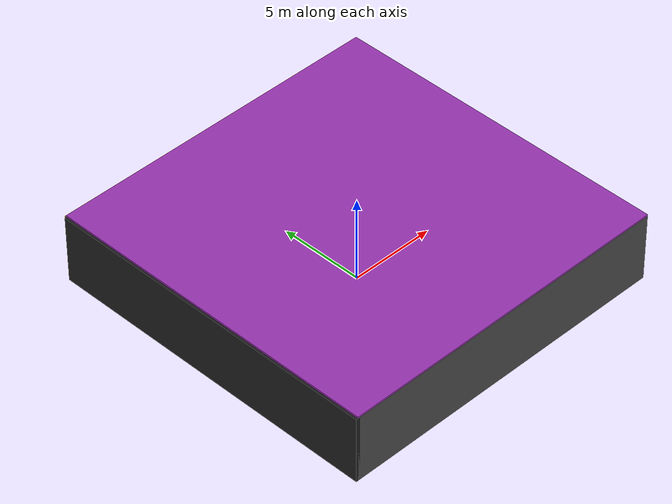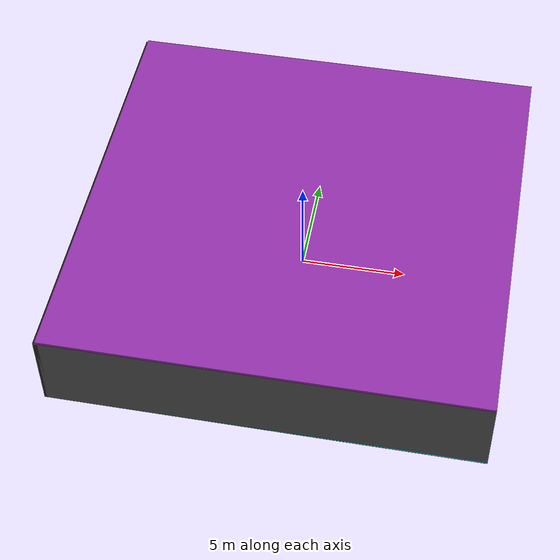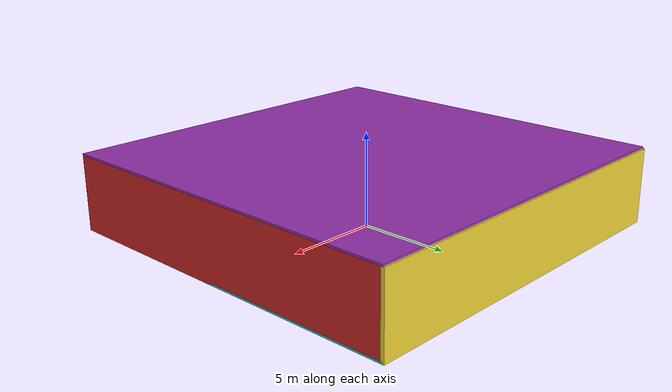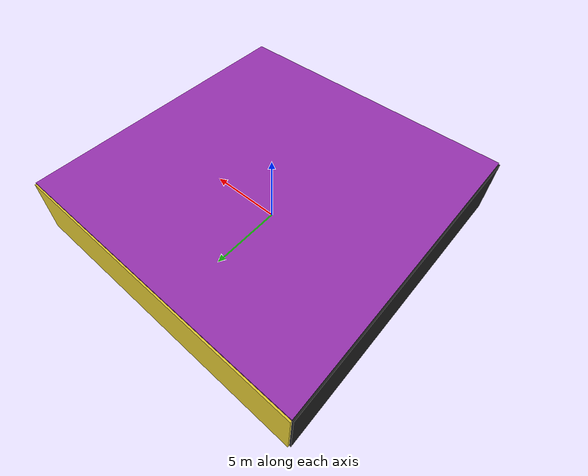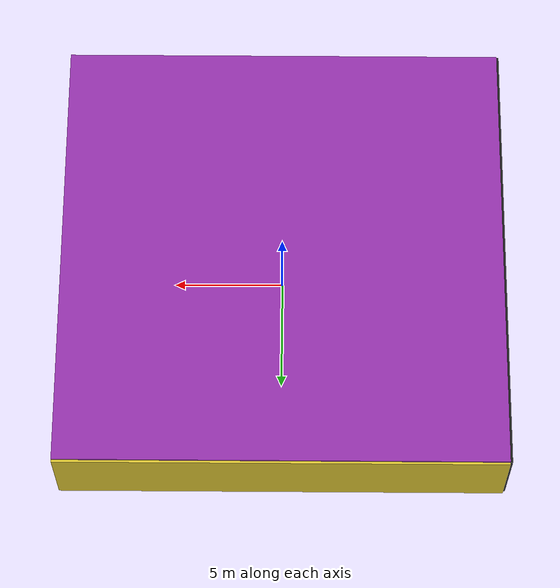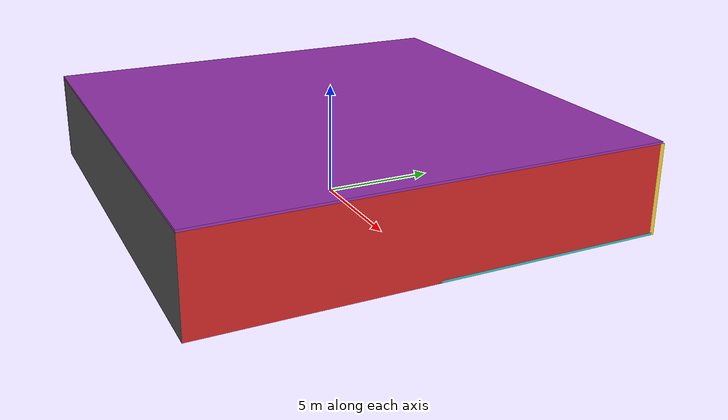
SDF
<sdf version="1.4">
 <world name="default">
  <physics type="ode">
   <max_step_size>0.001</max_step_size>
   <real_time_factor>1</real_time_factor>
   <real_time_update_rate>1000</real_time_update_rate>
   <gravity>0 0 -9.8</gravity>
  </physics>
  <scene><ambient>0.4 0.4 0.4 1</ambient><background>0.7 0.7 0.7 1</background><shadows>1</shadows></scene>
  <model name="Surrounding">
   <static>1</static>
   <link name="Ceiling">
    <collision name="Ceiling_Collision"><geometry><box><size>20 20 0.1</size></box></geometry></collision>
    <visual name="Ceiling_Visual">
     <geometry><box><size>20 20 0.1</size></box></geometry>
     <material>
      <script><uri>file://media/materials/scripts/gazebo.material</uri><name>Gazebo/Purple</name></script>
     </material>
    </visual>
    <pose>0 0 4.05 0 0 0</pose>
   </link>
   <link name="Wall_South">
    <collision name="Wall_South_Collision">
     <geometry><box><size>20 0 4</size></box></geometry>
     <pose>0 0 2 0 -0 0</pose>
    </collision>
    <visual name="Wall_South_Visual">
     <pose>0 0 2 0 -0 0</pose>
     <geometry><box><size>20 0 4</size></box></geometry>
     <material>
      <script><uri>file://media/materials/scripts/gazebo.material</uri><name>Gazebo/Road</name></script>
     </material>
    </visual>
    <velocity_decay><linear>0</linear><angular>0</angular></velocity_decay>
    <pose>0 -10 0 0 -0 0</pose>
   </link>
   <link name="Wall_East">
    <collision name="Wall_21_Collision">
     <geometry><box><size>20 0 4</size></box></geometry>
     <pose>0 0 2 0 -0 0</pose>
    </collision>
    <visual name="Wall_21_Visual">
     <pose>0 0 2 0 -0 0</pose>
     <geometry><box><size>20 0 4</size></box></geometry>
     <material>
      <script><uri>file://media/materials/scripts/gazebo.material</uri><name>Gazebo/RedGlow</name></script>
     </material>
    </visual>
    <velocity_decay><linear>0</linear><angular>0</angular></velocity_decay>
    <pose>10 0 0 0 -0 1.5708</pose>
   </link>
   <link name="Wall_North">
    <collision name="Wall_22_Collision">
     <geometry><box><size>20 0.2 4</size></box></geometry>
     <pose>0 0 2 0 -0 0</pose>
    </collision>
    <visual name="Wall_22_Visual">
     <pose>0 0 2 0 -0 0</pose>
     <geometry><box><size>20 0.2 4</size></box></geometry>
     <material>
      <script><uri>file://media/materials/scripts/gazebo.material</uri><name>Gazebo/ZincYellow</name></script>
     </material>
    </visual>
    <velocity_decay><linear>0</linear><angular>0</angular></velocity_decay>
    <pose>0 10 0 0 -0 0</pose>
   </link>
   <link name="Wall_West">
    <collision name="Wall_23_Collision">
     <geometry><box><size>20 0.2 4</size></box></geometry>
     <pose>0 0 2 0 -0 0</pose>
    </collision>
    <visual name="Wall_23_Visual">
     <pose>0 0 2 0 -0 0</pose>
     <geometry><box><size>20 0.2 4</size></box></geometry>
     <material>
      <script><uri>file://media/materials/scripts/gazebo.material</uri><name>Gazebo/Black</name></script>
     </material>
    </visual>
    <velocity_decay><linear>0</linear><angular>0</angular></velocity_decay>
    <pose>-10 0 0 0 0 -1.5708</pose>
   </link>
   <link name="Ground_link">
    <collision name="collision">
     <pose>0 0 .05 0 -0 0</pose>
     <geometry><box><size>20 20 0.1</size></box></geometry>
    </collision>
    <visual name="visual">
     <pose>0 0 .05 0 -0 0</pose>
     <geometry><box><size>20 20 0.1</size></box></geometry>
     <material>
      <script>
       <uri>file://media/materials/scripts/gazebo.material</uri>
       <name>Gazebo/TurquoiseGlowOutline</name>
      </script>
     </material>
    </visual>
   </link>
   <static>1</static>
  </model>
  <spherical_coordinates>
   <surface_model>EARTH_WGS84</surface_model>
   <latitude_deg>0</latitude_deg>
   <longitude_deg>0</longitude_deg>
   <elevation>0</elevation>
   <heading_deg>0</heading_deg>
  </spherical_coordinates>
  <light name="lightball_0" type="diffuse">
   <diffuse>0.8 0.8 0.8 1</diffuse>
   <specular>0.2 0.2 0.2 1</specular>
   <attenuation>
    <range>100</range>
    <constant>0.7</constant>
    <linear>0.01</linear>
    <quadratic>0.001</quadratic>
   </attenuation>
   <direction>-0.5 0.1 -0.9</direction>
   <pose>-6.28416131412 -3.52412330745 1.36841456638 0 0 0</pose>
  </light>
  <light name="lightball_1" type="diffuse">
   <diffuse>0.8 0.8 0.8 1</diffuse>
   <specular>0.2 0.2 0.2 1</specular>
   <attenuation>
    <range>100</range>
    <constant>0.7</constant>
    <linear>0.01</linear>
    <quadratic>0.001</quadratic>
   </attenuation>
   <direction>-0.5 0.1 -0.9</direction>
   <pose>4.80141943985 -3.68844905896 3.36125628384 0 0 0</pose>
  </light>
  <light name="lightball_2" type="diffuse">
   <diffuse>0.8 0.8 0.8 1</diffuse>
   <specular>0.2 0.2 0.2 1</specular>
   <attenuation>
    <range>100</range>
    <constant>0.7</constant>
    <linear>0.01</linear>
    <quadratic>0.001</quadratic>
   </attenuation>
   <direction>-0.5 0.1 -0.9</direction>
   <pose>-5.25583777122 2.17451763919 3.65730360022 0 0 0</pose>
  </light>
  <light name="lightball_3" type="diffuse">
   <diffuse>0.8 0.8 0.8 1</diffuse>
   <specular>0.2 0.2 0.2 1</specular>
   <attenuation>
    <range>100</range>
    <constant>0.7</constant>
    <linear>0.01</linear>
    <quadratic>0.001</quadratic>
   </attenuation>
   <direction>-0.5 0.1 -0.9</direction>
   <pose>-5.96525085307 4.88859858104 1.29829509001 0 0 0</pose>
  </light>
  <light name="lightball_4" type="diffuse">
   <diffuse>0.8 0.8 0.8 1</diffuse>
   <specular>0.2 0.2 0.2 1</specular>
   <attenuation>
    <range>100</range>
    <constant>0.7</constant>
    <linear>0.01</linear>
    <quadratic>0.001</quadratic>
   </attenuation>
   <direction>-0.5 0.1 -0.9</direction>
   <pose>-8.28343819816 -8.35347730483 2.50727597975 0 0 0</pose>
  </light>
  <light name="lightball_5" type="diffuse">
   <diffuse>0.8 0.8 0.8 1</diffuse>
   <specular>0.2 0.2 0.2 1</specular>
   <attenuation>
    <range>100</range>
    <constant>0.7</constant>
    <linear>0.01</linear>
    <quadratic>0.001</quadratic>
   </attenuation>
   <direction>-0.5 0.1 -0.9</direction>
   <pose>0.335272893108 6.87153764032 2.06064624537 0 0 0</pose>
  </light>
  <light name="lightball_6" type="diffuse">
   <diffuse>0.8 0.8 0.8 1</diffuse>
   <specular>0.2 0.2 0.2 1</specular>
   <attenuation>
    <range>100</range>
    <constant>0.7</constant>
    <linear>0.01</linear>
    <quadratic>0.001</quadratic>
   </attenuation>
   <direction>-0.5 0.1 -0.9</direction>
   <pose>8.32728622075 -4.41712619895 2.98258322314 0 0 0</pose>
  </light>
  <light name="lightball_7" type="diffuse">
   <diffuse>0.8 0.8 0.8 1</diffuse>
   <specular>0.2 0.2 0.2 1</specular>
   <attenuation>
    <range>100</range>
    <constant>0.7</constant>
    <linear>0.01</linear>
    <quadratic>0.001</quadratic>
   </attenuation>
   <direction>-0.5 0.1 -0.9</direction>
   <pose>6.95205588607 -3.57104999574 0.72331270624 0 0 0</pose>
  </light>
  <light name="lightball_8" type="diffuse">
   <diffuse>0.8 0.8 0.8 1</diffuse>
   <specular>0.2 0.2 0.2 1</specular>
   <attenuation>
    <range>100</range>
    <constant>0.7</constant>
    <linear>0.01</linear>
    <quadratic>0.001</quadratic>
   </attenuation>
   <direction>-0.5 0.1 -0.9</direction>
   <pose>-4.10984849433 -2.10678047607 2.40192312779 0 0 0</pose>
  </light>
  <light name="lightball_9" type="diffuse">
   <diffuse>0.8 0.8 0.8 1</diffuse>
   <specular>0.2 0.2 0.2 1</specular>
   <attenuation>
    <range>100</range>
    <constant>0.7</constant>
    <linear>0.01</linear>
    <quadratic>0.001</quadratic>
   </attenuation>
   <direction>-0.5 0.1 -0.9</direction>
   <pose>-7.78511301696 7.53928520059 0.599762266356 0 0 0</pose>
  </light>
  <light name="lightball_10" type="diffuse">
   <diffuse>0.8 0.8 0.8 1</diffuse>
   <specular>0.2 0.2 0.2 1</specular>
   <attenuation>
    <range>100</range>
    <constant>0.7</constant>
    <linear>0.01</linear>
    <quadratic>0.001</quadratic>
   </attenuation>
   <direction>-0.5 0.1 -0.9</direction>
   <pose>2.06469051918 -6.59282652462 2.67548106382 0 0 0</pose>
  </light>
  <light name="lightball_11" type="diffuse">
   <diffuse>0.8 0.8 0.8 1</diffuse>
   <specular>0.2 0.2 0.2 1</specular>
   <attenuation>
    <range>100</range>
    <constant>0.7</constant>
    <linear>0.01</linear>
    <quadratic>0.001</quadratic>
   </attenuation>
   <direction>-0.5 0.1 -0.9</direction>
   <pose>2.21028343431 9.71619967096 1.31949369433 0 0 0</pose>
  </light>
  <include><uri>model://cabinet</uri><pose>-2.24665101024 -7.90529899978 0 0 0 2.71646761454</pose></include>
  <include>
   <uri>model://textured_shapes</uri>
   <pose>-2.02071674074 1.57791556253 0 0 0 0.990733648937</pose>
  </include>
  <include><uri>model://cabinet</uri><pose>0.311988779643 -6.52452508641 0 0 0 0.947214054388</pose></include>
  <include>
   <uri>model://textured_shapes</uri>
   <pose>2.14011257442 -5.45466758149 0 0 0 0.648152727277</pose>
  </include>
  <include>
   <uri>model://textured_shapes</uri>
   <pose>1.31024745203 4.67751126384 0 0 0 2.54601927906</pose>
  </include>
  <include><uri>model://table</uri><pose>4.45968213824 4.65555880321 0 0 0 0.976857057591</pose></include>
 </world>
</sdf>

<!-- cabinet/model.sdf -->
<sdf version="1.5">
  <model name="cabinet">
    <static>true</static>
    <link name="cabinet_bottom_plate">
      <inertial>
        <pose>0 0 -1 0 0 0</pose>
        <inertia>
          <ixx>2.050000</ixx>
          <ixy>0</ixy>
          <ixz>0</ixz>
          <iyy>2.050000</iyy>
          <iyz>0</iyz>
          <izz>2.050000</izz>
        </inertia>
        <mass>25.000000</mass>
      </inertial>
      <collision name="cabinet_bottom_plate_geom">
        <pose>0 0 0.010000 0 0 0</pose>
        <geometry>
          <box>
            <size>0.450000 0.450000 0.020000</size>
          </box>
        </geometry>
      </collision>
      <visual name="cabinet_bottom_plate_geom_visual">
        <pose>0 0 0.010000 0 0 0</pose>
        <geometry>
          <box>
            <size>0.450000 0.450000 0.020000</size>
          </box>
        </geometry>
        <material>
          <script>
            <uri>model://media/materials/scripts/gazebo.material</uri>
            <name>Gazebo/Wood</name>
          </script>
        </material>
      </visual>
      <collision name="cabinet_bottom_plate_geom_cabinet_back_plate">
        <pose>0.235000 0 0.510000 0 0 0</pose>
        <geometry>
          <box>
            <size>0.020000 0.450000 1.020000</size>
          </box>
        </geometry>
      </collision>
      <visual name="cabinet_bottom_plate_geom_cabinet_back_plate_visual">
        <pose>0.235000 0 0.510000 0 0 0</pose>
        <geometry>
          <box>
            <size>0.020000 0.450000 1.020000</size>
          </box>
        </geometry>
        <material>
          <script>
            <uri>model://media/materials/scripts/gazebo.material</uri>
            <name>Gazebo/Wood</name>
          </script>
        </material>
      </visual>
      <collision name="cabinet_bottom_plate_geom_cabinet_left_plate">
        <pose>0 0.235000 0.510000 0 0 0</pose>
        <geometry>
          <box>
            <size>0.450000 0.020000 1.020000</size>
          </box>
        </geometry>
      </collision>
      <visual name="cabinet_bottom_plate_geom_cabinet_left_plate_visual">
        <pose>0 0.235000 0.510000 0 0 0</pose>
        <geometry>
          <box>
            <size>0.450000 0.020000 1.020000</size>
          </box>
        </geometry>
        <material>
          <script>
            <uri>model://media/materials/scripts/gazebo.material</uri>
            <name>Gazebo/Wood</name>
          </script>
        </material>
      </visual>
      <collision name="cabinet_bottom_plate_geom_cabinet_middle_plate">
        <pose>0 0 0.510000 0 0 0</pose>
        <geometry>
          <box>
            <size>0.450000 0.450000 0.020000</size>
          </box>
        </geometry>
      </collision>
      <visual name="cabinet_bottom_plate_geom_cabinet_middle_plate_visual">
        <pose>0 0 0.510000 0 0 0</pose>
        <geometry>
          <box>
            <size>0.450000 0.450000 0.020000</size>
          </box>
        </geometry>
        <material>
          <script>
            <uri>model://media/materials/scripts/gazebo.material</uri>
            <name>Gazebo/Wood</name>
          </script>
        </material>
      </visual>
      <collision name="cabinet_bottom_plate_geom_cabinet_right_plate">
        <pose>0 -0.235000 0.510000 0 0 0</pose>
        <geometry>
          <box>
            <size>0.450000 0.020000 1.020000</size>
          </box>
        </geometry>
      </collision>
      <visual name="cabinet_bottom_plate_geom_cabinet_right_plate_visual">
        <pose>0 -0.235000 0.510000 0 0 0</pose>
        <geometry>
          <box>
            <size>0.450000 0.020000 1.020000</size>
          </box>
        </geometry>
        <material>
          <script>
            <uri>model://media/materials/scripts/gazebo.material</uri>
            <name>Gazebo/Wood</name>
          </script>
        </material>
      </visual>
      <collision name="cabinet_bottom_plate_geom_cabinet_top_plate">
        <pose>0 0 1.010000 0 0 0</pose>
        <geometry>
          <box>
            <size>0.450000 0.450000 0.020000</size>
          </box>
        </geometry>
      </collision>
      <visual name="cabinet_bottom_plate_geom_cabinet_top_plate_visual">
        <pose>0 0 1.010000 0 0 0</pose>
        <geometry>
          <box>
            <size>0.450000 0.450000 0.020000</size>
          </box>
        </geometry>
        <material>
          <script>
            <uri>model://media/materials/scripts/gazebo.material</uri>
            <name>Gazebo/Wood</name>
          </script>
        </material>
      </visual>
    </link>
  </model>
</sdf>

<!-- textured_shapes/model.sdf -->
<sdf version="1.6">
  <model name="textured_shapes">
    <pose>0 0 0.5 0 0 0</pose>
    <link name="box">
      <pose>0 -1.5 0 0 0 0</pose>
      <collision name="collision">
        <geometry>
          <box>
            <size>1 1 1</size>
          </box>
        </geometry>
      </collision>
      <visual name="visual">
        <geometry>
          <box>
            <size>1 1 1</size>
          </box>
        </geometry>
        <material>
          <script>
            <uri>model://../model_source/models/textured_shapes/materials/scripts</uri>
            <uri>model://../model_source/models/textured_shapes/materials/textures</uri>
            <name>TexturedShape/Squares</name>
          </script>
        </material>
      </visual>
    </link>
    <link name="sphere">
      <collision name="collision">
        <geometry>
          <sphere>
            <radius>0.5</radius>
          </sphere>
        </geometry>
      </collision>
      <visual name="visual">
        <geometry>
          <sphere>
            <radius>0.5</radius>
          </sphere>
        </geometry>
        <material>
          <script>
            <uri>model://../model_source/models/textured_shapes/materials/scripts</uri>
            <uri>model://../model_source/models/textured_shapes/materials/textures</uri>
            <name>TexturedShape/Squares</name>
          </script>
        </material>
      </visual>
    </link>
    <link name="cylinder">
      <pose>0 1.5 0 0 0 0</pose>
      <collision name="collision">
        <geometry>
          <cylinder>
            <radius>0.5</radius>
            <length>1</length>
          </cylinder>
        </geometry>
      </collision>
      <visual name="visual">
        <geometry>
          <cylinder>
            <radius>0.5</radius>
            <length>1</length>
          </cylinder>
        </geometry>
        <material>
          <script>
            <uri>model://../model_source/models/textured_shapes/materials/scripts</uri>
            <uri>model://../model_source/models/textured_shapes/materials/textures</uri>
            <name>TexturedShape/Squares</name>
          </script>
        </material>
      </visual>
    </link>
  </model>
</sdf>

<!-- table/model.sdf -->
<sdf version="1.5">
  <model name="table">
    <static>true</static>
    <link name="link">
      <collision name="surface">
        <pose>0 0 1.0 0 0 0</pose>
        <geometry>
          <box>
            <size>1.5 0.8 0.03</size>
          </box>
        </geometry>
        <surface>
          <friction>
            <ode>
              <mu>0.6</mu>
              <mu2>0.6</mu2>
            </ode>
          </friction>
        </surface>
      </collision>
      <visual name="visual1">
        <pose>0 0 1.0 0 0 0</pose>
        <geometry>
          <box>
            <size>1.5 0.8 0.03</size>
          </box>
        </geometry>
        <material>
          <script>
            <uri>model://media/materials/scripts/gazebo.material</uri>
            <name>Gazebo/Wood</name>
          </script>
        </material>
      </visual>
      <collision name="front_left_leg">
        <pose>0.68 0.38 0.5 0 0 0</pose>
        <geometry>
          <cylinder>
            <radius>0.02</radius>
            <length>1.0</length>
          </cylinder>
        </geometry>
      </collision>
      <visual name="front_left_leg">
        <pose>0.68 0.38 0.5 0 0 0</pose>
        <geometry>
          <cylinder>
            <radius>0.02</radius>
            <length>1.0</length>
          </cylinder>
        </geometry>
        <material>
          <script>
            <uri>model://media/materials/scripts/gazebo.material</uri>
            <name>Gazebo/Grey</name>
          </script>
        </material>
      </visual>
      <collision name="front_right_leg">
        <pose>0.68 -0.38 0.5 0 0 0</pose>
        <geometry>
          <cylinder>
            <radius>0.02</radius>
            <length>1.0</length>
          </cylinder>
        </geometry>
      </collision>
      <visual name="front_right_leg">
        <pose>0.68 -0.38 0.5 0 0 0</pose>
        <geometry>
          <cylinder>
            <radius>0.02</radius>
            <length>1.0</length>
          </cylinder>
        </geometry>
        <material>
          <script>
            <uri>model://media/materials/scripts/gazebo.material</uri>
            <name>Gazebo/Grey</name>
          </script>
        </material>
      </visual>
      <collision name="back_right_leg">
        <pose>-0.68 -0.38 0.5 0 0 0</pose>
        <geometry>
          <cylinder>
            <radius>0.02</radius>
            <length>1.0</length>
          </cylinder>
        </geometry>
      </collision>
      <visual name="back_right_leg">
        <pose>-0.68 -0.38 0.5 0 0 0</pose>
        <geometry>
          <cylinder>
            <radius>0.02</radius>
            <length>1.0</length>
          </cylinder>
        </geometry>
        <material>
          <script>
            <uri>model://media/materials/scripts/gazebo.material</uri>
            <name>Gazebo/Grey</name>
          </script>
        </material>
      </visual>
      <collision name="back_left_leg">
        <pose>-0.68 0.38 0.5 0 0 0</pose>
        <geometry>
          <cylinder>
            <radius>0.02</radius>
            <length>1.0</length>
          </cylinder>
        </geometry>
      </collision>
      <visual name="back_left_leg">
        <pose>-0.68 0.38 0.5 0 0 0</pose>
        <geometry>
          <cylinder>
            <radius>0.02</radius>
            <length>1.0</length>
          </cylinder>
        </geometry>
        <material>
          <script>
            <uri>model://media/materials/scripts/gazebo.material</uri>
            <name>Gazebo/Grey</name>
          </script>
        </material>
      </visual>
    </link>
  </model>
</sdf>
